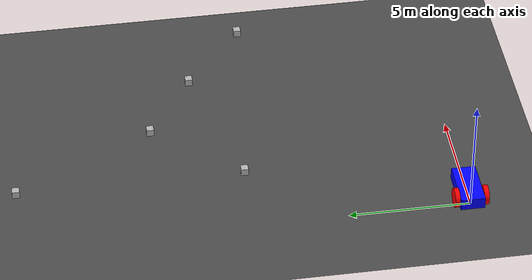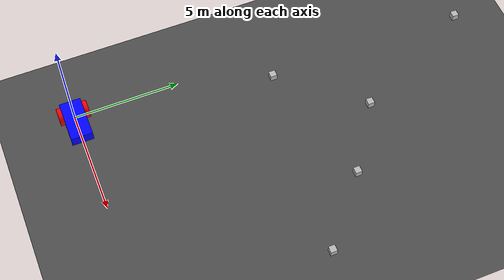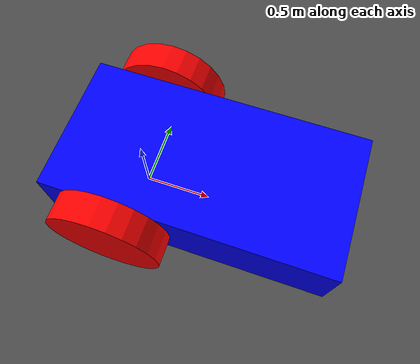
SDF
<?xml version="1.0" ?>
<sdf version="1.8">
    <world name="first_world">
        <physics name="1ms" type="ignored">
            <max_step_size>0.001</max_step_size>
            <real_time_factor>1.0</real_time_factor>
        </physics>

        <plugin filename="gz-sim-physics-system" name="gz::sim::systems::Physics"/>
        <plugin filename="gz-sim-user-commands-system" name="gz::sim::systems::UserCommands"/>
        <plugin filename="gz-sim-scene-broadcaster-system" name="gz::sim::systems::SceneBroadcaster"/>
        <plugin name='gz::sim::systems::Contact' filename='gz-sim-contact-system'/>
        <plugin name='gz::sim::systems::Imu' filename='gz-sim-imu-system'/>
        <plugin name='gz::sim::systems::AirPressure' filename='gz-sim-air-pressure-system'/>
        <plugin name='gz::sim::systems::Sensors' filename='gz-sim-sensors-system'>
            <render_engine>ogre2</render_engine>
        </plugin>

        <gui fullscreen="0">
            <!-- 3D görünümün oluşmasını sağlarlar.
            GzScene3D kullanımı MinimalScene'e göre daha kullanışlıdır
            -->
            <plugin name='3D View' filename='GzScene3D'>
                <gz-gui>
                    <title>3D View</title>
                    <property type="bool" key="showTitleBar">false</property>
                    <property type="string" key="state">docked</property>
                </gz-gui>
                <engine>ogre2</engine>
                <scene>scene</scene>
                <ambient_light>0.4 0.4 0.4</ambient_light>
                <background_color>0.8 0.8 0.8</background_color>
                <camera_pose>-6 0 6 0 0.5 0</camera_pose>
                <camera_clip>
                    <near>0.25</near>
                    <far>25000</far>
                </camera_clip>
                <horizontal_fov>57.29578</horizontal_fov> <!-- Kamera bir nesneyi takip ederken kullanışlı oluyor -->
            </plugin>

            <!-- Dünyayı durdurma, devam ettirme vs işlerine yarayan butonların ayarlarının
            yapılmasını sağlar. -->
            <plugin filename="WorldControl" name="World control">
                <gz-gui>
                    <title>World control</title>
                    <property type="bool" key="showTitleBar">false</property>
                    <property type="bool" key="resizable">false</property>
                    <property type="double" key="height">72</property>
                    <property type="double" key="width">150</property>
                    <property type="double" key="z">1</property>

                    <property type="string" key="state">floating</property>
                    <anchors target="3D View">
                    <line own="left" target="left"/>
                    <line own="bottom" target="bottom"/>
                    </anchors>
                </gz-gui>
                <play_pause>true</play_pause>
                <step>true</step>
                <start_paused>true</start_paused>
                <service>/world/world_demo/control</service>
                <stats_topic>/world/world_demo/stats</stats_topic>
            </plugin>
            <!-- Dünya durumunu gösterir. (geçen zaman, RTF, ...)-->
            <plugin filename="WorldStats" name="World stats">
                <gz-gui>
                    <title>World stats</title>
                    <property type="bool" key="showTitleBar">false</property>
                    <property type="bool" key="resizable">false</property>
                    <property type="double" key="height">110</property>
                    <property type="double" key="width">290</property>
                    <property type="double" key="z">1</property>

                    <property type="string" key="state">floating</property>
                    <anchors target="3D View">
                    <line own="right" target="right"/>
                    <line own="bottom" target="bottom"/>
                    </anchors>
                </gz-gui>

                <sim_time>true</sim_time>
                <real_time>true</real_time>
                <real_time_factor>true</real_time_factor>
                <iterations>true</iterations>
                <topic>/world/world_demo/stats</topic>
            </plugin>
        </gui>

        <include>
            <name>wall</name>
            <pose>5 0 1 0 0 0</pose>
            <uri>model://cube</uri>
        </include>
        <include>
            <uri>model://blue_wheel_bot</uri>
        </include>
        <include>
            <uri>model://gray_ground</uri>
        </include>

    </world>
</sdf>

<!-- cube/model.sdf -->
<sdf version="1.5">
    <model name="cube">
        <static>true</static>
        <link name="link">
            <collision name="collision1">
                <pose>0 12.5 0.1 0 0 0</pose>
                <geometry>
                    <mesh>
                        <uri>model://cube/meshes/cube.dae</uri>
                    </mesh>
                </geometry>
            </collision>
            <visual name="visual1">

              <pose>0 12.5 0.1 0 0 0</pose>
              <geometry>
              <mesh>
                 <uri>model://cube/meshes/cube.dae</uri>
              </mesh>
              </geometry>

              <material>
                  <script>
                      <uri>model://cube/materials/scripts</uri>
                      <uri>model://cube/materials/textures</uri>
                      <name>cubeMat/Diffuse</name>
                  </script>
              </material>
             </visual>

             <collision name="collision2">
                <pose>3 10.5 0.1 0 0 0</pose>
                <geometry>
                    <mesh>
                        <uri>model://cube/meshes/cube.dae</uri>
                    </mesh>
                </geometry>
            </collision>
            <visual name="visual2">

              <pose>3 10.5 0.1 0 0 0</pose>
              <geometry>
              <mesh>
                 <uri>model://cube/meshes/cube.dae</uri>
              </mesh>
              </geometry>

              <material>
                  <script>
                      <uri>model://cube/materials/scripts</uri>
                      <uri>model://cube/materials/textures</uri>
                      <name>cubeMat/Diffuse</name>
                  </script>
              </material>
             </visual>

             <collision name="collision3">
                <pose>-3 9 0.1 0 0 0</pose>
                <geometry>
                    <mesh>
                        <uri>model://cube/meshes/cube.dae</uri>
                    </mesh>
                </geometry>
            </collision>
            <visual name="visual3">

              <pose>-3 9 0.1 0 0 0</pose>
              <geometry>
              <mesh>
                 <uri>model://cube/meshes/cube.dae</uri>
              </mesh>
              </geometry>

              <material>
                  <script>
                      <uri>model://cube/materials/scripts</uri>
                      <uri>model://cube/materials/textures</uri>
                      <name>cubeMat/Diffuse</name>
                  </script>
              </material>
             </visual>

             <collision name="collision4">
                <pose>6 8 0.1 0 0 0</pose>
                <geometry>
                    <mesh>
                        <uri>model://cube/meshes/cube.dae</uri>
                    </mesh>
                </geometry>
            </collision>
            <visual name="visual4">

              <pose>6 8 0.1 0 0 0</pose>
              <geometry>
              <mesh>
                 <uri>model://cube/meshes/cube.dae</uri>
              </mesh>
              </geometry>

              <material>
                  <script>
                      <uri>model://cube/materials/scripts</uri>
                      <uri>model://cube/materials/textures</uri>
                      <name>cubeMat/Diffuse</name>
                  </script>
              </material>
             </visual>

             <collision name="collision5">
                <pose>-3 18.3 0.1 0 0 0</pose>
                <geometry>
                    <mesh>
                        <uri>model://cube/meshes/cube.dae</uri>
                    </mesh>
                </geometry>
            </collision>
            <visual name="visual5">

              <pose>-3 18.3 0.1 0 0 0</pose>
              <geometry>
              <mesh>
                 <uri>model://cube/meshes/cube.dae</uri>
              </mesh>
              </geometry>

              <material>
                  <script>
                      <uri>model://cube/materials/scripts</uri>
                      <uri>model://cube/materials/textures</uri>
                      <name>cubeMat/Diffuse</name>
                  </script>
              </material>
             </visual>
        </link>
    </model>
</sdf>

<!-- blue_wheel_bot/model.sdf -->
<sdf version="1.8">
    <model name="blue_wheel_bot">
        <pose>0 0 0 0 0 0</pose>
        <link name="base">
            <pose>0.5 0 0.4 0 0 0</pose>
            <inertial> <!-- modelin ataletini ve kütle bilgileri girilir -->
                <mass>1.14395</mass>
                <inertia>
                    <ixx>0.095329</ixx>
                    <ixy>0</ixy>
                    <ixz>0</ixz>
                    <iyy>0.381317</iyy>
                    <iyz>0</iyz>
                    <izz>0.476646</izz>
                </inertia>
            </inertial>
            <visual name='visual'>
                <geometry>
                    <box>
                        <size>2.0 1.0 0.5</size>
                    </box>
                </geometry>
                <material>
                    <ambient>0.0 0.0 1.0 1</ambient>
                    <diffuse>0.0 0.0 1.0 1</diffuse>
                    <specular>0.0 0.0 1.0 1</specular>
                </material>
            </visual>
            <collision name='collision'>
                <geometry>
                    <box>
                        <size>2.0 1.0 0.5</size>
                    </box>
                </geometry>
            </collision>
            <sensor name="vehicle_imu" type="imu">
                <always_on>1</always_on>
                <update_rate>100</update_rate>
                <visualize>true</visualize>
                <topic>imu</topic>
            </sensor>
            <sensor name='gpu_lidar' type='gpu_lidar'>"
                <pose>-0.5 0 0.5 0 0 0</pose>
                <topic>lidar</topic>
                <update_rate>10</update_rate>
                <ray>
                    <scan>
                        <horizontal>
                            <samples>160</samples>
                            <resolution>1</resolution>
                            <min_angle>-1.396263</min_angle>
                            <max_angle>1.396263</max_angle>
                        </horizontal>
                        <vertical>
                            <samples>1</samples>
                            <resolution>0.01</resolution>
                            <min_angle>0</min_angle>
                            <max_angle>0</max_angle>
                        </vertical>
                    </scan>
                    <range>
                        <min>0.02</min>
                        <max>5.0</max>
                        <resolution>0.01</resolution>
                    </range>
                </ray>
                <always_on>1</always_on>
                <visualize>true</visualize>
            </sensor>
        </link>

        <link name='left_wheel'>
            <pose relative_to="base">-0.5 0.6 0 -1.5707 0 0</pose>
            <inertial>
                <mass>1</mass>
                <inertia>
                    <ixx>0.043333</ixx>
                    <ixy>0</ixy>
                    <ixz>0</ixz>
                    <iyy>0.043333</iyy>
                    <iyz>0</iyz>
                    <izz>0.08</izz>
                </inertia>
            </inertial>
            <visual name='visual'>
                <geometry>
                    <cylinder>
                        <radius>0.4</radius>
                        <length>0.2</length>
                    </cylinder>
                </geometry>
                <material>
                    <ambient>1.0 0.0 0.0 1</ambient>
                    <diffuse>1.0 0.0 0.0 1</diffuse>
                    <specular>1.0 0.0 0.0 1</specular>
                </material>
            </visual>
            <collision name='collision'>
                <geometry>
                    <cylinder>
                        <radius>0.4</radius>
                        <length>0.2</length>
                    </cylinder>
                </geometry>
            </collision>
        </link>

        <link name='right_wheel'>
            <pose relative_to="base">-0.5 -0.6 0 -1.5707 0 0</pose> <!--angles are in radian-->
            <inertial>
                <mass>1</mass>
                <inertia>
                    <ixx>0.043333</ixx>
                    <ixy>0</ixy>
                    <ixz>0</ixz>
                    <iyy>0.043333</iyy>
                    <iyz>0</iyz>
                    <izz>0.08</izz>
                </inertia>
            </inertial>
            <visual name='visual'>
                <geometry>
                    <cylinder>
                        <radius>0.4</radius>
                        <length>0.2</length>
                    </cylinder>
                </geometry>
                <material>
                    <ambient>1.0 0.0 0.0 1</ambient>
                    <diffuse>1.0 0.0 0.0 1</diffuse>
                    <specular>1.0 0.0 0.0 1</specular>
                </material>
            </visual>
            <collision name='collision'>
                <geometry>
                    <cylinder>
                        <radius>0.4</radius>
                        <length>0.2</length>
                    </cylinder>
                </geometry>
            </collision>
        </link>

        <link name='caster'>
            <pose relative_to='base'>0.75 0 -0.2 0 0 0</pose>
            <inertial>
                <mass>1</mass>
                <inertia>
                    <ixx>0.016</ixx>
                    <ixy>0</ixy>
                    <ixz>0</ixz>
                    <iyy>0.016</iyy>
                    <iyz>0</iyz>
                    <izz>0.016</izz>
                </inertia>
            </inertial>
            <visual name='visual'>
                <geometry>
                    <sphere>
                        <radius>0.2</radius>
                    </sphere>
                </geometry>
                <material>
                    <ambient>0.0 1 0.0 1</ambient>
                    <diffuse>0.0 1 0.0 1</diffuse>
                    <specular>0.0 1 0.0 1</specular>
                </material>
            </visual>
            <collision name='collision'>
                <geometry>
                    <sphere>
                        <radius>0.2</radius>
                    </sphere>
                </geometry>
            </collision>
        </link>

        <joint name='left_wheel_joint' type='revolute'>
            <pose relative_to='left_wheel'/>
            <parent>base</parent>
            <child>left_wheel</child>
            <axis>
                <xyz expressed_in='__model__'>0 1 0</xyz>
                <limit>
                    <lower>-1.79769e+308</lower>    <!--negative infinity-->
                    <upper>1.79769e+308</upper>     <!--positive infinity-->
                </limit>
            </axis>
        </joint>
        <joint name='right_wheel_joint' type='revolute'>
            <pose relative_to='right_wheel'/>
            <parent>base</parent>
            <child>right_wheel</child>
            <axis>
                <xyz expressed_in='__model__'>0 1 0</xyz>
                <limit>
                    <lower>-1.79769e+308</lower>    <!--negative infinity-->
                    <upper>1.79769e+308</upper>     <!--positive infinity-->
                </limit>
            </axis>
        </joint>
        <joint name='caster_wheel' type='ball'>
            <parent>base</parent>
            <child>caster</child>
        </joint>

        <plugin filename="gz-sim-diff-drive-system" name="gz::sim::systems::DiffDrive">
            <left_joint>left_wheel_joint</left_joint>
            <right_joint>right_wheel_joint</right_joint>
            <wheel_separation>1.2</wheel_separation>
            <wheel_radius>0.4</wheel_radius>
            <odom_publish_frequency>1</odom_publish_frequency>
            <topic>cmd_vel</topic>
        </plugin>

        <!-- Belirtilen veri ğirişi sağlandığında çalışır.-->
        <plugin filename="gz-sim-triggered-publisher-system" name="gz::sim::systems::TriggeredPublisher">
            <input type="gz.msgs.Int32" topic="/keyboard/keypress">
            <match field="data">16777235</match>
            </input>
            <output type="gz.msgs.Twist" topic="/cmd_vel">
                linear: {x: 0.5}, angular: {z: 0.0}
            </output>
        </plugin>
        <!-- Moving Backward-->
        <plugin filename="gz-sim-triggered-publisher-system" name="gz::sim::systems::TriggeredPublisher">
            <input type="gz.msgs.Int32" topic="/keyboard/keypress">
            <match field="data">16777237</match>
            </input>
            <output type="gz.msgs.Twist" topic="/cmd_vel">
                linear: {x: -0.5}, angular: {z: 0.0}
            </output>
        </plugin>

        <plugin filename="gz-sim-touchplugin-system" name="gz::sim::systems::TouchPlugin">
            <target>blue_wheel_bot</target>
            <namespace>wall</namespace>
            <time>0.001</time>
            <enabled>true</enabled>
        </plugin>

        <plugin filename="gz-sim-triggered-publisher-system" name="gz::sim::systems::TriggeredPublisher">
            <input type="gz.msgs.Boolean" topic="/wall/touched"></input>
            <output>linear: { x: 0.0 }, angular: { z: 0.0 } </output>
        </plugin>

    </model>
</sdf>

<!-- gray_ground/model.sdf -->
<sdf version="1.8">
 	 <model name="ground_plane">
		<pose>0 0 0 0 -0 0</pose>
		<static>true</static>
		<link name='link'>
			<collision name='collision'>
				<geometry>
					<plane>
						<normal>0 0 1</normal>
						<size>1 1</size>
					</plane>
				</geometry>
				<surface>
					<friction>
						<ode/>
					</friction>
					<bounce/>
					<contact/>
				</surface>
			</collision>
			<visual name='visual'>
				<geometry>
				<plane>
					<normal>0 0 1</normal>
					<size>100 100</size>
				</plane>
				</geometry>
				<material>
					<ambient>0.1 0.1 0.1 1</ambient>
					<diffuse>0.3 0.3 0.3 1</diffuse>
					<specular>0 0 1 1</specular>
				</material>
			</visual>
			<pose>0 0 0 0 -0 0</pose>
			<inertial>
				<pose>0 0 0 0 -0 0</pose>
				<mass>1</mass>
				<inertia>
				<ixx>1</ixx>
				<ixy>0</ixy>
				<ixz>0</ixz>
				<iyy>1</iyy>
				<iyz>0</iyz>
				<izz>1</izz>
				</inertia>
			</inertial>
			<enable_wind>false</enable_wind>
		</link>
		<self_collide>false</self_collide>
    </model>
</sdf>
